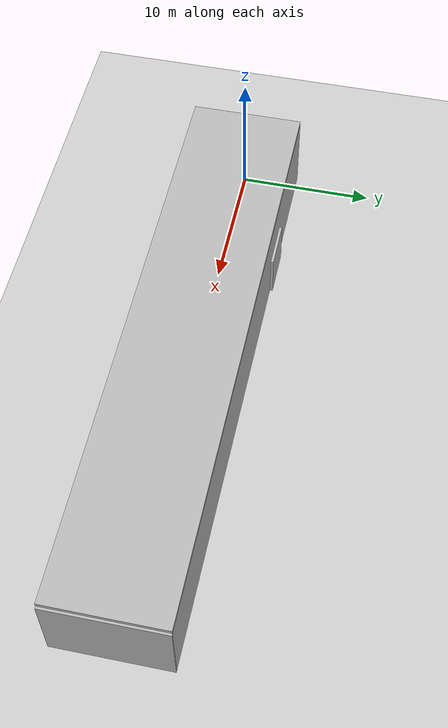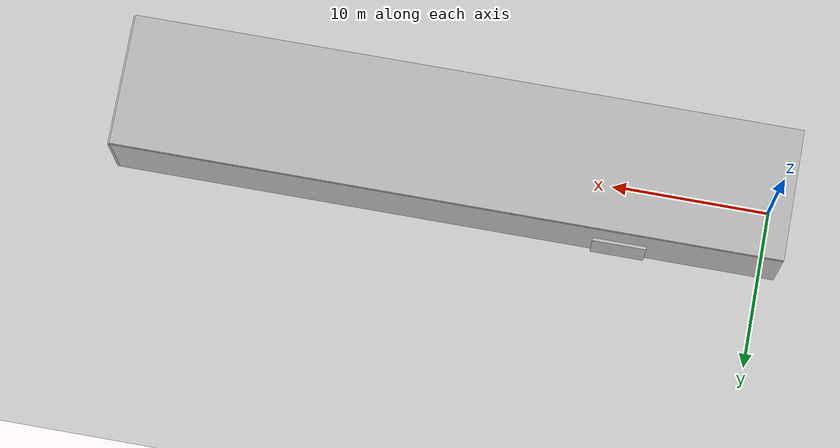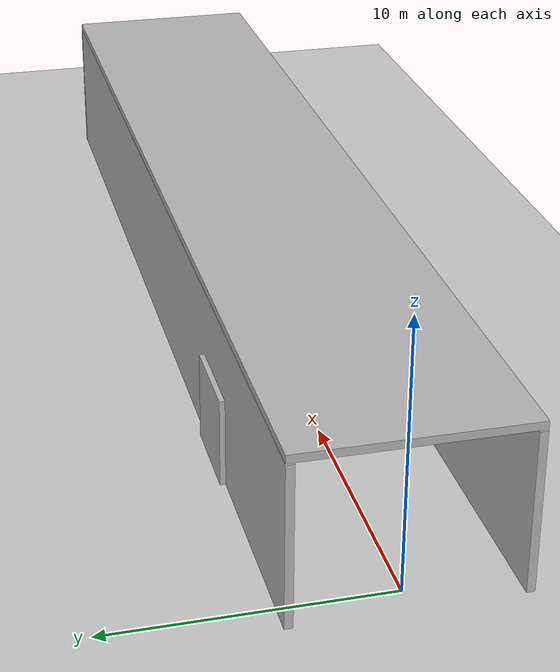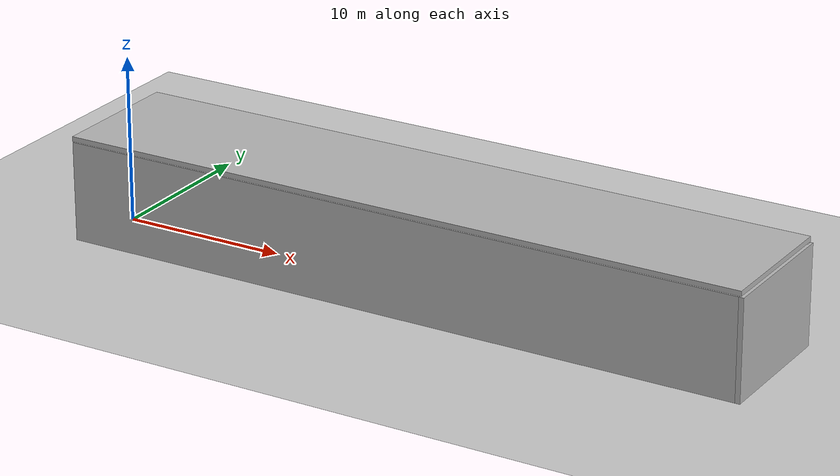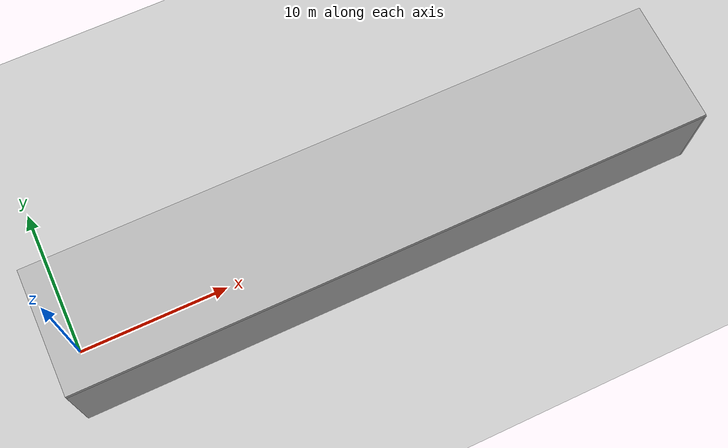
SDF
<sdf version="1.9">
 <world name="tunnel_irregular">
  <physics type="ode">
   <max_step_size>0.004</max_step_size>
   <real_time_factor>0.8</real_time_factor>
   <real_time_update_rate>200</real_time_update_rate>
  </physics>
  <gravity>0 0 -9.8</gravity>
  <scene>
   <grid>true</grid>
   <ambient>0.35 0.35 0.35 1</ambient>
   <background>0.65 0.70 0.78 1</background>
   <shadows>true</shadows>
  </scene>
  <model name="ground_plane">
   <static>true</static>
   <link name="link">
    <collision name="collision">
     <geometry><plane><normal>0 0 1</normal><size>200 200</size></plane></geometry>
    </collision>
    <visual name="visual"><geometry><plane><normal>0 0 1</normal><size>200 200</size></plane></geometry></visual>
   </link>
  </model>
  <model name="wall_north">
   <static>true</static>
   <pose>20 4 3 0 0 0</pose>
   <link name="link">
    <collision name="collision"><geometry><box><size>42 0.3 6</size></box></geometry></collision>
    <visual name="visual"><geometry><box><size>42 0.3 6</size></box></geometry></visual>
   </link>
  </model>
  <model name="wall_south">
   <static>true</static>
   <pose>20 -4 3 0 0 0</pose>
   <link name="link">
    <collision name="collision"><geometry><box><size>42 0.3 6</size></box></geometry></collision>
    <visual name="visual"><geometry><box><size>42 0.3 6</size></box></geometry></visual>
   </link>
  </model>
  <model name="ceiling">
   <static>true</static>
   <pose>20 0 6.2 0 0 0</pose>
   <link name="link">
    <collision name="collision"><geometry><box><size>42 8.3 0.3</size></box></geometry></collision>
    <visual name="visual"><geometry><box><size>42 8.3 0.3</size></box></geometry></visual>
   </link>
  </model>
  <model name="alcove_a">
   <static>true</static>
   <pose>9 3.1 1.7 0 0 0</pose>
   <link name="link">
    <collision name="collision"><geometry><box><size>3.4 2.5 3.4</size></box></geometry></collision>
    <visual name="visual"><geometry><box><size>3.4 2.5 3.4</size></box></geometry></visual>
   </link>
  </model>
  <model name="beam_b">
   <static>true</static>
   <pose>17 -1.3 4.7 0.1 0 0.25</pose>
   <link name="link">
    <collision name="collision"><geometry><box><size>4.5 0.35 0.45</size></box></geometry></collision>
    <visual name="visual"><geometry><box><size>4.5 0.35 0.45</size></box></geometry></visual>
   </link>
  </model>
  <model name="corner_c">
   <static>true</static>
   <pose>28 2.7 1.4 0 0 0.45</pose>
   <link name="link">
    <collision name="collision"><geometry><box><size>1.2 2.0 2.8</size></box></geometry></collision>
    <visual name="visual"><geometry><box><size>1.2 2.0 2.8</size></box></geometry></visual>
   </link>
  </model>
  <model name="end_wall">
   <static>true</static>
   <pose>41 0 3 0 0 0</pose>
   <link name="link">
    <collision name="collision"><geometry><box><size>0.3 8.3 6</size></box></geometry></collision>
    <visual name="visual"><geometry><box><size>0.3 8.3 6</size></box></geometry></visual>
   </link>
  </model>
  <light name="sunUTC" type="directional">
   <pose>0 0 500 0 0 0</pose>
   <intensity>1</intensity>
   <direction>0.001 0.625 -0.78</direction>
  </light>
  <spherical_coordinates>
   <surface_model>EARTH_WGS84</surface_model>
   <world_frame_orientation>ENU</world_frame_orientation>
   <latitude_deg>10.8231</latitude_deg>
   <longitude_deg>106.6297</longitude_deg>
   <elevation>10</elevation>
  </spherical_coordinates>
 </world>
</sdf>
